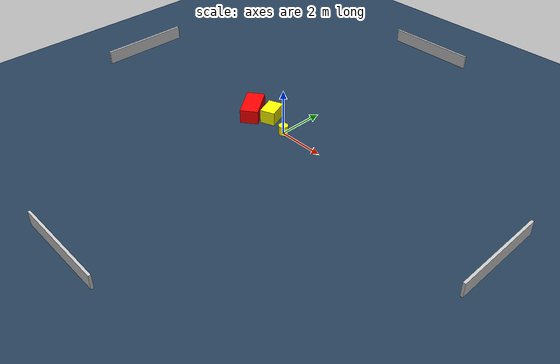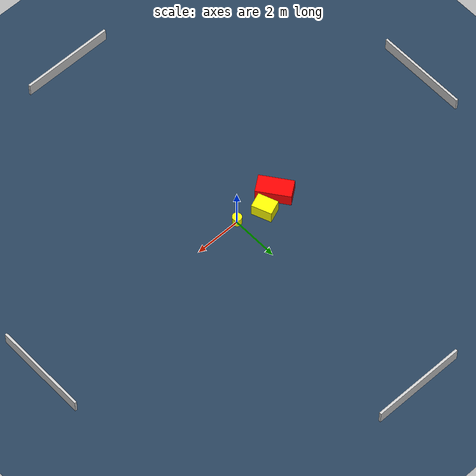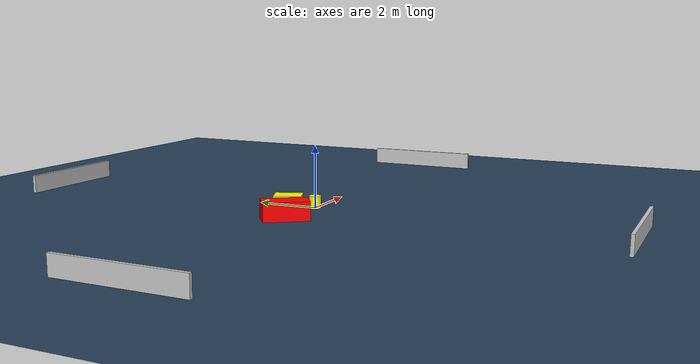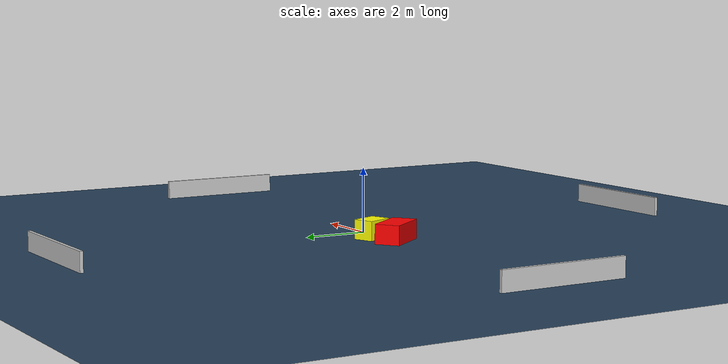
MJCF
<?xml version="1.0" ?>
<mujoco model="generated_environment">
  <option timestep="0.01" integrator="RK4" cone="elliptic"/>
  <default>
    <geom density="1"/>
  </default>
  <asset>
    <texture builtin="gradient" height="3072" name="skybox" rgb1="0.3 0.5 0.7" rgb2="0 0 0" type="skybox" width="512"/>
    <texture builtin="checker" height="300" name="groundplane" rgb1="0.2 0.3 0.4" rgb2="0.1 0.2 0.3" type="2d" width="300"/>
    <material name="groundplane" reflectance="0.2" texrepeat="5 5" texture="groundplane"/>
  </asset>
  <worldbody>
    <light dir="0 0 -1" directional="true" pos="0 0 1.5"/>
    <geom condim="3" friction="0.5 0.005 0.001" material="groundplane" name="floor" pos="0 0 0" size="0 0 0.05" type="plane"/>
    <body name="walls">
      <geom name="wall_1" condim="4" pos="-10.0 0.0 0.3" rgba="0.800000011920929 0.800000011920929 0.800000011920929 1.0" size="0.05 2.0 0.3" type="box"/>
      <geom name="wall_2" condim="4" pos="10.0 0.0 0.3" rgba="0.800000011920929 0.800000011920929 0.800000011920929 1.0" size="0.05 2.0 0.3" type="box"/>
      <geom name="wall_3" condim="4" pos="0.0 -10.0 0.3" rgba="0.800000011920929 0.800000011920929 0.800000011920929 1.0" size="2.0 0.05 0.3" type="box"/>
      <geom name="wall_4" condim="4" pos="0.0 10.0 0.3" rgba="0.800000011920929 0.800000011920929 0.800000011920929 1.0" size="2.0 0.05 0.3" type="box"/>
    </body>
    <body name="robot">
      <joint name="joint_x" type="slide" pos="0 0 0" axis="1 0 0"/>
      <joint name="joint_y" type="slide" pos="0 0 0" axis="0 1 0"/>
      <geom name="robot" type="cylinder" pos="0.0 0.0 0.2" size="0.2 0.2 0.0" mass="5.0" friction="1.0 0.005 0.0001" condim="4" rgba="1.0 1.0 0.0 1.0"/>
    </body>
    <body name="obstacle_1_movable">
      <geom name="obstacle_1_movable" condim="4" pos="-1.1166060596521592 0.37843610960090623 0.3" euler="0 0 291.15850562093874" friction="0.0 0.005 0.001" rgba="1.0 1.0 0.0 1.0" size="0.4348808695283629 0.3211552910992261 0.3" type="box" mass="0.1"/>
      <joint type="free"/>
    </body>
    <body name="obstacle_2_static">
      <geom name="obstacle_2_static" condim="4" pos="-1.9558916009449234 0.04598802635943134 0.3" euler="0 0 306.42931034122506" friction="0.0 0.005 0.001" rgba="1.0 0.0 0.0 1.0" size="0.7295411390744362 0.38402651040318425 0.3" type="box"/>
    </body>
  </worldbody>
  <actuator>
    <motor name="actuator_x" joint="joint_x" gear="1" ctrlrange="-1 1"/>
    <motor name="actuator_y" joint="joint_y" gear="1" ctrlrange="-1 1"/>
  </actuator>
</mujoco>
